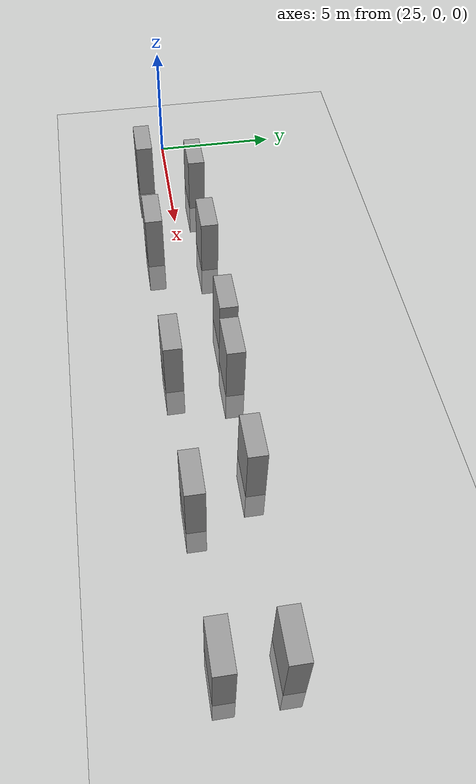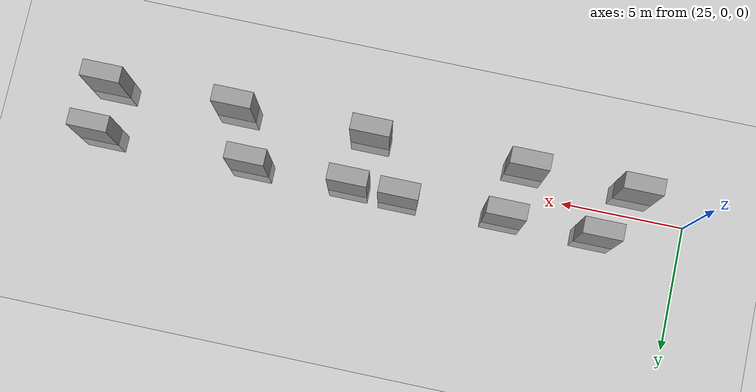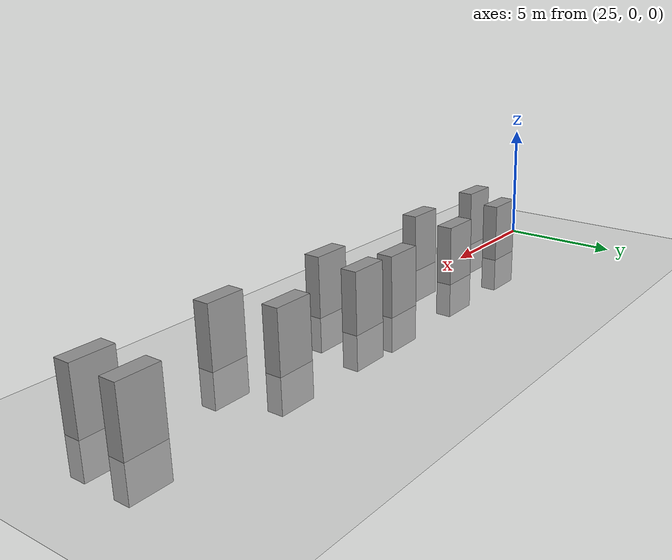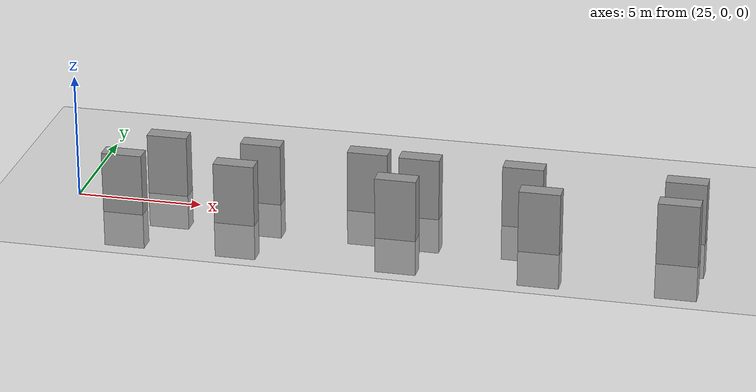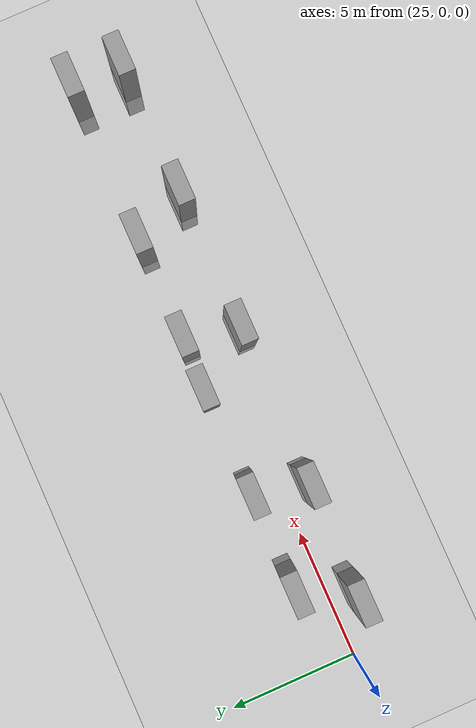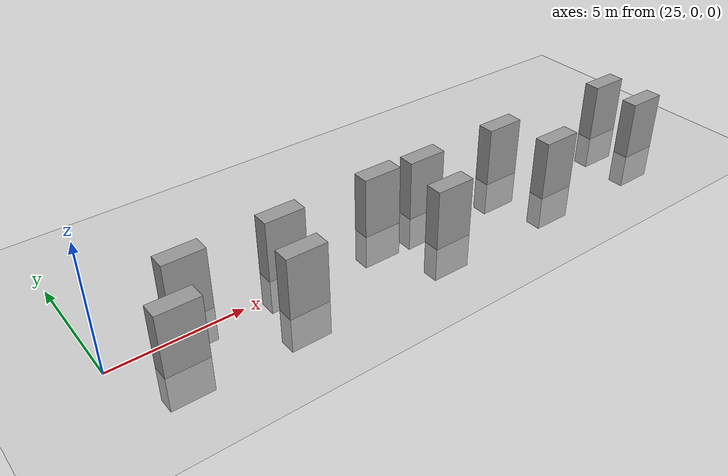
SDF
<sdf version="1.6">
 <world name="default">
  <model name="ground_plane">
   <static>1</static>
   <link name="link">
    <collision name="collision">
     <geometry><plane><normal>0 0 1</normal><size>300 300</size></plane></geometry>
     <surface><friction><ode><mu>100</mu><mu2>50</mu2></ode></friction></surface>
    </collision>
    <visual name="visual">
     <cast_shadows>0</cast_shadows>
     <geometry><plane><normal>0 0 1</normal><size>300 300</size></plane></geometry>
     <material>
      <script><uri>file://media/materials/scripts/gazebo.material</uri><name>Gazebo/Grey</name></script>
     </material>
    </visual>
   </link>
  </model>
  <model name="unit_box_new">
   <link name="link">
    <inertial>
     <mass>3.93982e+06</mass>
     <inertia>
      <ixx>5.42451e+06</ixx>
      <ixy>0</ixy>
      <ixz>0</ixz>
      <iyy>5.42451e+06</iyy>
      <iyz>0</iyz>
      <izz>656636</izz>
     </inertia>
    </inertial>
    <visual name="visual">
     <geometry><box><size>1.60999 0.669802 3.93981</size></box></geometry>
     <material>
      <script><name>Gazebo/Grey</name><uri>file://media/materials/scripts/gazebo.material</uri></script>
      <shader type="pixel"><normal_map>__default__</normal_map></shader>
      <ambient>0.3 0.3 0.3 1</ambient>
      <diffuse>0.7 0.7 0.7 1</diffuse>
      <specular>0.01 0.01 0.01 1</specular>
      <emissive>0 0 0 1</emissive>
     </material>
    </visual>
    <collision name="collision">
     <geometry><box><size>1.60999 0.669802 3.93981</size></box></geometry>
     <surface>
      <friction>
       <ode><mu>1</mu><mu2>1</mu2><fdir1>0 0 0</fdir1><slip1>0</slip1><slip2>0</slip2></ode>
       <torsional>
        <coefficient>1</coefficient>
        <patch_radius>0</patch_radius>
        <surface_radius>0</surface_radius>
        <use_patch_radius>1</use_patch_radius>
        <ode><slip>0</slip></ode>
       </torsional>
      </friction>
      <bounce><restitution_coefficient>0</restitution_coefficient><threshold>1e+06</threshold></bounce>
      <contact>
       <collide_without_contact>0</collide_without_contact>
       <collide_without_contact_bitmask>1</collide_without_contact_bitmask>
       <collide_bitmask>1</collide_bitmask>
       <ode>
        <soft_cfm>0</soft_cfm>
        <soft_erp>0.2</soft_erp>
        <kp>1e+13</kp>
        <kd>1</kd>
        <max_vel>0.01</max_vel>
        <min_depth>0</min_depth>
       </ode>
       <bullet>
        <split_impulse>1</split_impulse>
        <split_impulse_penetration_threshold>-0.01</split_impulse_penetration_threshold>
        <soft_cfm>0</soft_cfm>
        <soft_erp>0.2</soft_erp>
        <kp>1e+13</kp>
        <kd>1</kd>
       </bullet>
      </contact>
     </surface>
    </collision>
   </link>
   <static>1</static>
   <pose>49.0308 1.06051 0.5 0 -0 0</pose>
  </model>
  <model name="unit_box_new_clone">
   <link name="link">
    <inertial>
     <mass>3.93982e+06</mass>
     <inertia>
      <ixx>5.42451e+06</ixx>
      <ixy>0</ixy>
      <ixz>0</ixz>
      <iyy>5.42451e+06</iyy>
      <iyz>0</iyz>
      <izz>656636</izz>
     </inertia>
    </inertial>
    <visual name="visual">
     <geometry><box><size>1.60999 0.669802 3.93981</size></box></geometry>
     <material>
      <script><name>Gazebo/Grey</name><uri>file://media/materials/scripts/gazebo.material</uri></script>
      <shader type="pixel"><normal_map>__default__</normal_map></shader>
      <ambient>0.3 0.3 0.3 1</ambient>
      <diffuse>0.7 0.7 0.7 1</diffuse>
      <specular>0.01 0.01 0.01 1</specular>
      <emissive>0 0 0 1</emissive>
     </material>
    </visual>
    <collision name="collision">
     <geometry><box><size>1.60999 0.669802 3.93981</size></box></geometry>
     <surface>
      <friction>
       <ode><mu>1</mu><mu2>1</mu2><fdir1>0 0 0</fdir1><slip1>0</slip1><slip2>0</slip2></ode>
       <torsional>
        <coefficient>1</coefficient>
        <patch_radius>0</patch_radius>
        <surface_radius>0</surface_radius>
        <use_patch_radius>1</use_patch_radius>
        <ode><slip>0</slip></ode>
       </torsional>
      </friction>
      <bounce><restitution_coefficient>0</restitution_coefficient><threshold>1e+06</threshold></bounce>
      <contact>
       <collide_without_contact>0</collide_without_contact>
       <collide_without_contact_bitmask>1</collide_without_contact_bitmask>
       <collide_bitmask>1</collide_bitmask>
       <ode>
        <soft_cfm>0</soft_cfm>
        <soft_erp>0.2</soft_erp>
        <kp>1e+13</kp>
        <kd>1</kd>
        <max_vel>0.01</max_vel>
        <min_depth>0</min_depth>
       </ode>
       <bullet>
        <split_impulse>1</split_impulse>
        <split_impulse_penetration_threshold>-0.01</split_impulse_penetration_threshold>
        <soft_cfm>0</soft_cfm>
        <soft_erp>0.2</soft_erp>
        <kp>1e+13</kp>
        <kd>1</kd>
       </bullet>
      </contact>
     </surface>
    </collision>
   </link>
   <static>1</static>
   <pose>49.0149 -0.973191 0.5 0 -0 0</pose>
  </model>
  <model name="unit_box_new_clone_0">
   <link name="link">
    <inertial>
     <mass>3.93982e+06</mass>
     <inertia>
      <ixx>5.42451e+06</ixx>
      <ixy>0</ixy>
      <ixz>0</ixz>
      <iyy>5.42451e+06</iyy>
      <iyz>0</iyz>
      <izz>656636</izz>
     </inertia>
    </inertial>
    <visual name="visual">
     <geometry><box><size>1.60999 0.669802 3.93981</size></box></geometry>
     <material>
      <script><name>Gazebo/Grey</name><uri>file://media/materials/scripts/gazebo.material</uri></script>
      <shader type="pixel"><normal_map>__default__</normal_map></shader>
      <ambient>0.3 0.3 0.3 1</ambient>
      <diffuse>0.7 0.7 0.7 1</diffuse>
      <specular>0.01 0.01 0.01 1</specular>
      <emissive>0 0 0 1</emissive>
     </material>
    </visual>
    <collision name="collision">
     <geometry><box><size>1.60999 0.669802 3.93981</size></box></geometry>
     <surface>
      <friction>
       <ode><mu>1</mu><mu2>1</mu2><fdir1>0 0 0</fdir1><slip1>0</slip1><slip2>0</slip2></ode>
       <torsional>
        <coefficient>1</coefficient>
        <patch_radius>0</patch_radius>
        <surface_radius>0</surface_radius>
        <use_patch_radius>1</use_patch_radius>
        <ode><slip>0</slip></ode>
       </torsional>
      </friction>
      <bounce><restitution_coefficient>0</restitution_coefficient><threshold>1e+06</threshold></bounce>
      <contact>
       <collide_without_contact>0</collide_without_contact>
       <collide_without_contact_bitmask>1</collide_without_contact_bitmask>
       <collide_bitmask>1</collide_bitmask>
       <ode>
        <soft_cfm>0</soft_cfm>
        <soft_erp>0.2</soft_erp>
        <kp>1e+13</kp>
        <kd>1</kd>
        <max_vel>0.01</max_vel>
        <min_depth>0</min_depth>
       </ode>
       <bullet>
        <split_impulse>1</split_impulse>
        <split_impulse_penetration_threshold>-0.01</split_impulse_penetration_threshold>
        <soft_cfm>0</soft_cfm>
        <soft_erp>0.2</soft_erp>
        <kp>1e+13</kp>
        <kd>1</kd>
       </bullet>
      </contact>
     </surface>
    </collision>
   </link>
   <static>1</static>
   <pose>42.7093 1.08155 0.5 0 -0 0</pose>
  </model>
  <model name="unit_box_new_clone_1">
   <link name="link">
    <inertial>
     <mass>3.93982e+06</mass>
     <inertia>
      <ixx>5.42451e+06</ixx>
      <ixy>0</ixy>
      <ixz>0</ixz>
      <iyy>5.42451e+06</iyy>
      <iyz>0</iyz>
      <izz>656636</izz>
     </inertia>
    </inertial>
    <visual name="visual">
     <geometry><box><size>1.60999 0.669802 3.93981</size></box></geometry>
     <material>
      <script><name>Gazebo/Grey</name><uri>file://media/materials/scripts/gazebo.material</uri></script>
      <shader type="pixel"><normal_map>__default__</normal_map></shader>
      <ambient>0.3 0.3 0.3 1</ambient>
      <diffuse>0.7 0.7 0.7 1</diffuse>
      <specular>0.01 0.01 0.01 1</specular>
      <emissive>0 0 0 1</emissive>
     </material>
    </visual>
    <collision name="collision">
     <geometry><box><size>1.60999 0.669802 3.93981</size></box></geometry>
     <surface>
      <friction>
       <ode><mu>1</mu><mu2>1</mu2><fdir1>0 0 0</fdir1><slip1>0</slip1><slip2>0</slip2></ode>
       <torsional>
        <coefficient>1</coefficient>
        <patch_radius>0</patch_radius>
        <surface_radius>0</surface_radius>
        <use_patch_radius>1</use_patch_radius>
        <ode><slip>0</slip></ode>
       </torsional>
      </friction>
      <bounce><restitution_coefficient>0</restitution_coefficient><threshold>1e+06</threshold></bounce>
      <contact>
       <collide_without_contact>0</collide_without_contact>
       <collide_without_contact_bitmask>1</collide_without_contact_bitmask>
       <collide_bitmask>1</collide_bitmask>
       <ode>
        <soft_cfm>0</soft_cfm>
        <soft_erp>0.2</soft_erp>
        <kp>1e+13</kp>
        <kd>1</kd>
        <max_vel>0.01</max_vel>
        <min_depth>0</min_depth>
       </ode>
       <bullet>
        <split_impulse>1</split_impulse>
        <split_impulse_penetration_threshold>-0.01</split_impulse_penetration_threshold>
        <soft_cfm>0</soft_cfm>
        <soft_erp>0.2</soft_erp>
        <kp>1e+13</kp>
        <kd>1</kd>
       </bullet>
      </contact>
     </surface>
    </collision>
   </link>
   <static>1</static>
   <pose>43.7255 -1.04227 0.5 0 -0 0</pose>
  </model>
  <model name="unit_box_new_clone_2">
   <link name="link">
    <inertial>
     <mass>3.93982e+06</mass>
     <inertia>
      <ixx>5.42451e+06</ixx>
      <ixy>0</ixy>
      <ixz>0</ixz>
      <iyy>5.42451e+06</iyy>
      <iyz>0</iyz>
      <izz>656636</izz>
     </inertia>
    </inertial>
    <visual name="visual">
     <geometry><box><size>1.60999 0.669802 3.93981</size></box></geometry>
     <material>
      <script><name>Gazebo/Grey</name><uri>file://media/materials/scripts/gazebo.material</uri></script>
      <shader type="pixel"><normal_map>__default__</normal_map></shader>
      <ambient>0.3 0.3 0.3 1</ambient>
      <diffuse>0.7 0.7 0.7 1</diffuse>
      <specular>0.01 0.01 0.01 1</specular>
      <emissive>0 0 0 1</emissive>
     </material>
    </visual>
    <collision name="collision">
     <geometry><box><size>1.60999 0.669802 3.93981</size></box></geometry>
     <surface>
      <friction>
       <ode><mu>1</mu><mu2>1</mu2><fdir1>0 0 0</fdir1><slip1>0</slip1><slip2>0</slip2></ode>
       <torsional>
        <coefficient>1</coefficient>
        <patch_radius>0</patch_radius>
        <surface_radius>0</surface_radius>
        <use_patch_radius>1</use_patch_radius>
        <ode><slip>0</slip></ode>
       </torsional>
      </friction>
      <bounce><restitution_coefficient>0</restitution_coefficient><threshold>1e+06</threshold></bounce>
      <contact>
       <collide_without_contact>0</collide_without_contact>
       <collide_without_contact_bitmask>1</collide_without_contact_bitmask>
       <collide_bitmask>1</collide_bitmask>
       <ode>
        <soft_cfm>0</soft_cfm>
        <soft_erp>0.2</soft_erp>
        <kp>1e+13</kp>
        <kd>1</kd>
        <max_vel>0.01</max_vel>
        <min_depth>0</min_depth>
       </ode>
       <bullet>
        <split_impulse>1</split_impulse>
        <split_impulse_penetration_threshold>-0.01</split_impulse_penetration_threshold>
        <soft_cfm>0</soft_cfm>
        <soft_erp>0.2</soft_erp>
        <kp>1e+13</kp>
        <kd>1</kd>
       </bullet>
      </contact>
     </surface>
    </collision>
   </link>
   <static>1</static>
   <pose>36.5371 1.15493 0.5 0 -0 0</pose>
  </model>
  <model name="unit_box_new_clone_2_clone">
   <link name="link">
    <inertial>
     <mass>3.93982e+06</mass>
     <inertia>
      <ixx>5.42451e+06</ixx>
      <ixy>0</ixy>
      <ixz>0</ixz>
      <iyy>5.42451e+06</iyy>
      <iyz>0</iyz>
      <izz>656636</izz>
     </inertia>
    </inertial>
    <visual name="visual">
     <geometry><box><size>1.60999 0.669802 3.93981</size></box></geometry>
     <material>
      <script><name>Gazebo/Grey</name><uri>file://media/materials/scripts/gazebo.material</uri></script>
      <shader type="pixel"><normal_map>__default__</normal_map></shader>
      <ambient>0.3 0.3 0.3 1</ambient>
      <diffuse>0.7 0.7 0.7 1</diffuse>
      <specular>0.01 0.01 0.01 1</specular>
      <emissive>0 0 0 1</emissive>
     </material>
    </visual>
    <collision name="collision">
     <geometry><box><size>1.60999 0.669802 3.93981</size></box></geometry>
     <surface>
      <friction>
       <ode><mu>1</mu><mu2>1</mu2><fdir1>0 0 0</fdir1><slip1>0</slip1><slip2>0</slip2></ode>
       <torsional>
        <coefficient>1</coefficient>
        <patch_radius>0</patch_radius>
        <surface_radius>0</surface_radius>
        <use_patch_radius>1</use_patch_radius>
        <ode><slip>0</slip></ode>
       </torsional>
      </friction>
      <bounce><restitution_coefficient>0</restitution_coefficient><threshold>1e+06</threshold></bounce>
      <contact>
       <collide_without_contact>0</collide_without_contact>
       <collide_without_contact_bitmask>1</collide_without_contact_bitmask>
       <collide_bitmask>1</collide_bitmask>
       <ode>
        <soft_cfm>0</soft_cfm>
        <soft_erp>0.2</soft_erp>
        <kp>1e+13</kp>
        <kd>1</kd>
        <max_vel>0.01</max_vel>
        <min_depth>0</min_depth>
       </ode>
       <bullet>
        <split_impulse>1</split_impulse>
        <split_impulse_penetration_threshold>-0.01</split_impulse_penetration_threshold>
        <soft_cfm>0</soft_cfm>
        <soft_erp>0.2</soft_erp>
        <kp>1e+13</kp>
        <kd>1</kd>
       </bullet>
      </contact>
     </surface>
    </collision>
   </link>
   <static>1</static>
   <pose>38.137 -1.06653 0.5 0 -0 0</pose>
  </model>
  <model name="unit_box_new_clone_2_clone_0">
   <link name="link">
    <inertial>
     <mass>3.93982e+06</mass>
     <inertia>
      <ixx>5.42451e+06</ixx>
      <ixy>0</ixy>
      <ixz>0</ixz>
      <iyy>5.42451e+06</iyy>
      <iyz>0</iyz>
      <izz>656636</izz>
     </inertia>
    </inertial>
    <visual name="visual">
     <geometry><box><size>1.60999 0.669802 3.93981</size></box></geometry>
     <material>
      <script><name>Gazebo/Grey</name><uri>file://media/materials/scripts/gazebo.material</uri></script>
      <shader type="pixel"><normal_map>__default__</normal_map></shader>
      <ambient>0.3 0.3 0.3 1</ambient>
      <diffuse>0.7 0.7 0.7 1</diffuse>
      <specular>0.01 0.01 0.01 1</specular>
      <emissive>0 0 0 1</emissive>
     </material>
    </visual>
    <collision name="collision">
     <geometry><box><size>1.60999 0.669802 3.93981</size></box></geometry>
     <surface>
      <friction>
       <ode><mu>1</mu><mu2>1</mu2><fdir1>0 0 0</fdir1><slip1>0</slip1><slip2>0</slip2></ode>
       <torsional>
        <coefficient>1</coefficient>
        <patch_radius>0</patch_radius>
        <surface_radius>0</surface_radius>
        <use_patch_radius>1</use_patch_radius>
        <ode><slip>0</slip></ode>
       </torsional>
      </friction>
      <bounce><restitution_coefficient>0</restitution_coefficient><threshold>1e+06</threshold></bounce>
      <contact>
       <collide_without_contact>0</collide_without_contact>
       <collide_without_contact_bitmask>1</collide_without_contact_bitmask>
       <collide_bitmask>1</collide_bitmask>
       <ode>
        <soft_cfm>0</soft_cfm>
        <soft_erp>0.2</soft_erp>
        <kp>1e+13</kp>
        <kd>1</kd>
        <max_vel>0.01</max_vel>
        <min_depth>0</min_depth>
       </ode>
       <bullet>
        <split_impulse>1</split_impulse>
        <split_impulse_penetration_threshold>-0.01</split_impulse_penetration_threshold>
        <soft_cfm>0</soft_cfm>
        <soft_erp>0.2</soft_erp>
        <kp>1e+13</kp>
        <kd>1</kd>
       </bullet>
      </contact>
     </surface>
    </collision>
   </link>
   <static>1</static>
   <pose>38.6114 1.07353 0.5 0 -0 0</pose>
  </model>
  <model name="unit_box_new_clone_2_clone_1">
   <link name="link">
    <inertial>
     <mass>3.93982e+06</mass>
     <inertia>
      <ixx>5.42451e+06</ixx>
      <ixy>0</ixy>
      <ixz>0</ixz>
      <iyy>5.42451e+06</iyy>
      <iyz>0</iyz>
      <izz>656636</izz>
     </inertia>
    </inertial>
    <visual name="visual">
     <geometry><box><size>1.60999 0.669802 3.93981</size></box></geometry>
     <material>
      <script><name>Gazebo/Grey</name><uri>file://media/materials/scripts/gazebo.material</uri></script>
      <shader type="pixel"><normal_map>__default__</normal_map></shader>
      <ambient>0.3 0.3 0.3 1</ambient>
      <diffuse>0.7 0.7 0.7 1</diffuse>
      <specular>0.01 0.01 0.01 1</specular>
      <emissive>0 0 0 1</emissive>
     </material>
    </visual>
    <collision name="collision">
     <geometry><box><size>1.60999 0.669802 3.93981</size></box></geometry>
     <surface>
      <friction>
       <ode><mu>1</mu><mu2>1</mu2><fdir1>0 0 0</fdir1><slip1>0</slip1><slip2>0</slip2></ode>
       <torsional>
        <coefficient>1</coefficient>
        <patch_radius>0</patch_radius>
        <surface_radius>0</surface_radius>
        <use_patch_radius>1</use_patch_radius>
        <ode><slip>0</slip></ode>
       </torsional>
      </friction>
      <bounce><restitution_coefficient>0</restitution_coefficient><threshold>1e+06</threshold></bounce>
      <contact>
       <collide_without_contact>0</collide_without_contact>
       <collide_without_contact_bitmask>1</collide_without_contact_bitmask>
       <collide_bitmask>1</collide_bitmask>
       <ode>
        <soft_cfm>0</soft_cfm>
        <soft_erp>0.2</soft_erp>
        <kp>1e+13</kp>
        <kd>1</kd>
        <max_vel>0.01</max_vel>
        <min_depth>0</min_depth>
       </ode>
       <bullet>
        <split_impulse>1</split_impulse>
        <split_impulse_penetration_threshold>-0.01</split_impulse_penetration_threshold>
        <soft_cfm>0</soft_cfm>
        <soft_erp>0.2</soft_erp>
        <kp>1e+13</kp>
        <kd>1</kd>
       </bullet>
      </contact>
     </surface>
    </collision>
   </link>
   <static>1</static>
   <pose>32.2535 1.0725 0.5 0 -0 0</pose>
  </model>
  <model name="unit_box_new_clone_2_clone_1_clone">
   <link name="link">
    <inertial>
     <mass>3.93982e+06</mass>
     <inertia>
      <ixx>5.42451e+06</ixx>
      <ixy>0</ixy>
      <ixz>0</ixz>
      <iyy>5.42451e+06</iyy>
      <iyz>0</iyz>
      <izz>656636</izz>
     </inertia>
    </inertial>
    <visual name="visual">
     <geometry><box><size>1.60999 0.669802 3.93981</size></box></geometry>
     <material>
      <script><name>Gazebo/Grey</name><uri>file://media/materials/scripts/gazebo.material</uri></script>
      <shader type="pixel"><normal_map>__default__</normal_map></shader>
      <ambient>0.3 0.3 0.3 1</ambient>
      <diffuse>0.7 0.7 0.7 1</diffuse>
      <specular>0.01 0.01 0.01 1</specular>
      <emissive>0 0 0 1</emissive>
     </material>
    </visual>
    <collision name="collision">
     <geometry><box><size>1.60999 0.669802 3.93981</size></box></geometry>
     <surface>
      <friction>
       <ode><mu>1</mu><mu2>1</mu2><fdir1>0 0 0</fdir1><slip1>0</slip1><slip2>0</slip2></ode>
       <torsional>
        <coefficient>1</coefficient>
        <patch_radius>0</patch_radius>
        <surface_radius>0</surface_radius>
        <use_patch_radius>1</use_patch_radius>
        <ode><slip>0</slip></ode>
       </torsional>
      </friction>
      <bounce><restitution_coefficient>0</restitution_coefficient><threshold>1e+06</threshold></bounce>
      <contact>
       <collide_without_contact>0</collide_without_contact>
       <collide_without_contact_bitmask>1</collide_without_contact_bitmask>
       <collide_bitmask>1</collide_bitmask>
       <ode>
        <soft_cfm>0</soft_cfm>
        <soft_erp>0.2</soft_erp>
        <kp>1e+13</kp>
        <kd>1</kd>
        <max_vel>0.01</max_vel>
        <min_depth>0</min_depth>
       </ode>
       <bullet>
        <split_impulse>1</split_impulse>
        <split_impulse_penetration_threshold>-0.01</split_impulse_penetration_threshold>
        <soft_cfm>0</soft_cfm>
        <soft_erp>0.2</soft_erp>
        <kp>1e+13</kp>
        <kd>1</kd>
       </bullet>
      </contact>
     </surface>
    </collision>
   </link>
   <static>1</static>
   <pose>31.7337 -1.06125 0.5 0 -0 0</pose>
  </model>
  <model name="unit_box_new_clone_2_clone_1_clone_0">
   <link name="link">
    <inertial>
     <mass>3.93982e+06</mass>
     <inertia>
      <ixx>5.42451e+06</ixx>
      <ixy>0</ixy>
      <ixz>0</ixz>
      <iyy>5.42451e+06</iyy>
      <iyz>0</iyz>
      <izz>656636</izz>
     </inertia>
    </inertial>
    <visual name="visual">
     <geometry><box><size>1.60999 0.669802 3.93981</size></box></geometry>
     <material>
      <script><name>Gazebo/Grey</name><uri>file://media/materials/scripts/gazebo.material</uri></script>
      <shader type="pixel"><normal_map>__default__</normal_map></shader>
      <ambient>0.3 0.3 0.3 1</ambient>
      <diffuse>0.7 0.7 0.7 1</diffuse>
      <specular>0.01 0.01 0.01 1</specular>
      <emissive>0 0 0 1</emissive>
     </material>
    </visual>
    <collision name="collision">
     <geometry><box><size>1.60999 0.669802 3.93981</size></box></geometry>
     <surface>
      <friction>
       <ode><mu>1</mu><mu2>1</mu2><fdir1>0 0 0</fdir1><slip1>0</slip1><slip2>0</slip2></ode>
       <torsional>
        <coefficient>1</coefficient>
        <patch_radius>0</patch_radius>
        <surface_radius>0</surface_radius>
        <use_patch_radius>1</use_patch_radius>
        <ode><slip>0</slip></ode>
       </torsional>
      </friction>
      <bounce><restitution_coefficient>0</restitution_coefficient><threshold>1e+06</threshold></bounce>
      <contact>
       <collide_without_contact>0</collide_without_contact>
       <collide_without_contact_bitmask>1</collide_without_contact_bitmask>
       <collide_bitmask>1</collide_bitmask>
       <ode>
        <soft_cfm>0</soft_cfm>
        <soft_erp>0.2</soft_erp>
        <kp>1e+13</kp>
        <kd>1</kd>
        <max_vel>0.01</max_vel>
        <min_depth>0</min_depth>
       </ode>
       <bullet>
        <split_impulse>1</split_impulse>
        <split_impulse_penetration_threshold>-0.01</split_impulse_penetration_threshold>
        <soft_cfm>0</soft_cfm>
        <soft_erp>0.2</soft_erp>
        <kp>1e+13</kp>
        <kd>1</kd>
       </bullet>
      </contact>
     </surface>
    </collision>
   </link>
   <static>1</static>
   <pose>28.4482 1.06332 0.5 0 -0 0</pose>
  </model>
  <model name="unit_box_new_clone_2_clone_1_clone_1">
   <link name="link">
    <inertial>
     <mass>3.93982e+06</mass>
     <inertia>
      <ixx>5.42451e+06</ixx>
      <ixy>0</ixy>
      <ixz>0</ixz>
      <iyy>5.42451e+06</iyy>
      <iyz>0</iyz>
      <izz>656636</izz>
     </inertia>
    </inertial>
    <visual name="visual">
     <geometry><box><size>1.60999 0.669802 3.93981</size></box></geometry>
     <material>
      <script><name>Gazebo/Grey</name><uri>file://media/materials/scripts/gazebo.material</uri></script>
      <shader type="pixel"><normal_map>__default__</normal_map></shader>
      <ambient>0.3 0.3 0.3 1</ambient>
      <diffuse>0.7 0.7 0.7 1</diffuse>
      <specular>0.01 0.01 0.01 1</specular>
      <emissive>0 0 0 1</emissive>
     </material>
    </visual>
    <collision name="collision">
     <geometry><box><size>1.60999 0.669802 3.93981</size></box></geometry>
     <surface>
      <friction>
       <ode><mu>1</mu><mu2>1</mu2><fdir1>0 0 0</fdir1><slip1>0</slip1><slip2>0</slip2></ode>
       <torsional>
        <coefficient>1</coefficient>
        <patch_radius>0</patch_radius>
        <surface_radius>0</surface_radius>
        <use_patch_radius>1</use_patch_radius>
        <ode><slip>0</slip></ode>
       </torsional>
      </friction>
      <bounce><restitution_coefficient>0</restitution_coefficient><threshold>1e+06</threshold></bounce>
      <contact>
       <collide_without_contact>0</collide_without_contact>
       <collide_without_contact_bitmask>1</collide_without_contact_bitmask>
       <collide_bitmask>1</collide_bitmask>
       <ode>
        <soft_cfm>0</soft_cfm>
        <soft_erp>0.2</soft_erp>
        <kp>1e+13</kp>
        <kd>1</kd>
        <max_vel>0.01</max_vel>
        <min_depth>0</min_depth>
       </ode>
       <bullet>
        <split_impulse>1</split_impulse>
        <split_impulse_penetration_threshold>-0.01</split_impulse_penetration_threshold>
        <soft_cfm>0</soft_cfm>
        <soft_erp>0.2</soft_erp>
        <kp>1e+13</kp>
        <kd>1</kd>
       </bullet>
      </contact>
     </surface>
    </collision>
   </link>
   <static>1</static>
   <pose>27.213 -1.00737 0.5 0 -0 0</pose>
  </model>
 </world>
</sdf>
